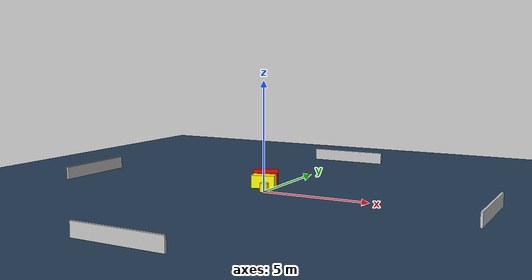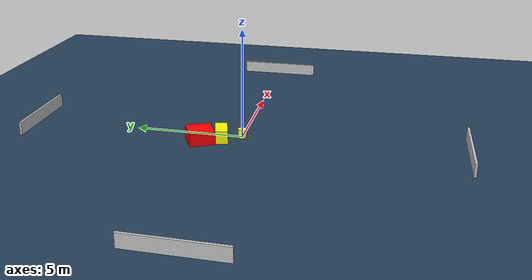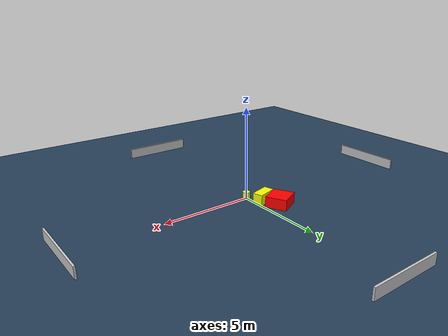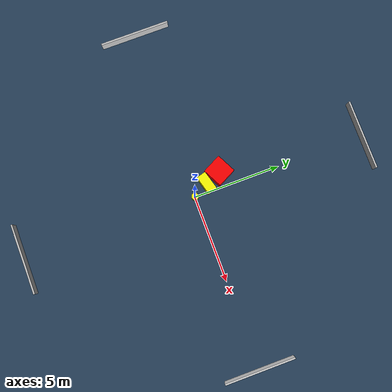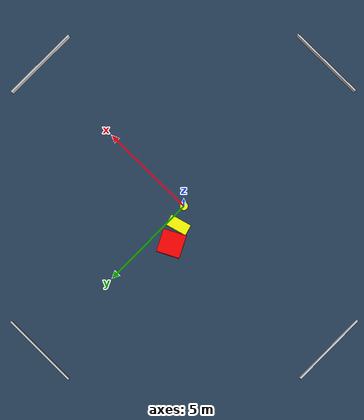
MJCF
<?xml version="1.0" ?>
<mujoco model="generated_environment">
  <option timestep="0.01" integrator="RK4" cone="elliptic"/>
  <default>
    <geom density="1"/>
  </default>
  <asset>
    <texture builtin="gradient" height="3072" name="skybox" rgb1="0.3 0.5 0.7" rgb2="0 0 0" type="skybox" width="512"/>
    <texture builtin="checker" height="300" name="groundplane" rgb1="0.2 0.3 0.4" rgb2="0.1 0.2 0.3" type="2d" width="300"/>
    <material name="groundplane" reflectance="0.2" texrepeat="5 5" texture="groundplane"/>
  </asset>
  <worldbody>
    <light dir="0 0 -1" directional="true" pos="0 0 1.5"/>
    <geom condim="3" friction="0.5 0.005 0.001" material="groundplane" name="floor" pos="0 0 0" size="0 0 0.05" type="plane"/>
    <body name="walls">
      <geom name="wall_1" condim="4" pos="-10.0 0.0 0.3" rgba="0.800000011920929 0.800000011920929 0.800000011920929 1.0" size="0.05 2.0 0.3" type="box"/>
      <geom name="wall_2" condim="4" pos="10.0 0.0 0.3" rgba="0.800000011920929 0.800000011920929 0.800000011920929 1.0" size="0.05 2.0 0.3" type="box"/>
      <geom name="wall_3" condim="4" pos="0.0 -10.0 0.3" rgba="0.800000011920929 0.800000011920929 0.800000011920929 1.0" size="2.0 0.05 0.3" type="box"/>
      <geom name="wall_4" condim="4" pos="0.0 10.0 0.3" rgba="0.800000011920929 0.800000011920929 0.800000011920929 1.0" size="2.0 0.05 0.3" type="box"/>
    </body>
    <body name="robot">
      <joint name="joint_x" type="slide" pos="0 0 0" axis="1 0 0"/>
      <joint name="joint_y" type="slide" pos="0 0 0" axis="0 1 0"/>
      <geom name="robot" type="cylinder" pos="0.0 0.0 0.2" size="0.2 0.2 0.0" mass="5.0" friction="1.0 0.005 0.0001" condim="4" rgba="1.0 1.0 0.0 1.0"/>
    </body>
    <body name="obstacle_1_movable">
      <geom name="obstacle_1_movable" condim="4" pos="-0.4750656273778957 0.8617545346513601 0.3" euler="0 0 195.57061406620085" friction="0.0 0.005 0.001" rgba="1.0 1.0 0.0 1.0" size="0.5438814277921409 0.27975820632318504 0.3" type="box" mass="0.1"/>
      <joint type="free"/>
    </body>
    <body name="obstacle_2_static">
      <geom name="obstacle_2_static" condim="4" pos="-0.8687565434697955 1.7478034440569983 0.3" euler="0 0 116.89724308594205" friction="0.0 0.005 0.001" rgba="1.0 0.0 0.0 1.0" size="0.5815963489666073 0.5881024424348896 0.3" type="box"/>
    </body>
  </worldbody>
  <actuator>
    <motor name="actuator_x" joint="joint_x" gear="1" ctrlrange="-1 1"/>
    <motor name="actuator_y" joint="joint_y" gear="1" ctrlrange="-1 1"/>
  </actuator>
</mujoco>
